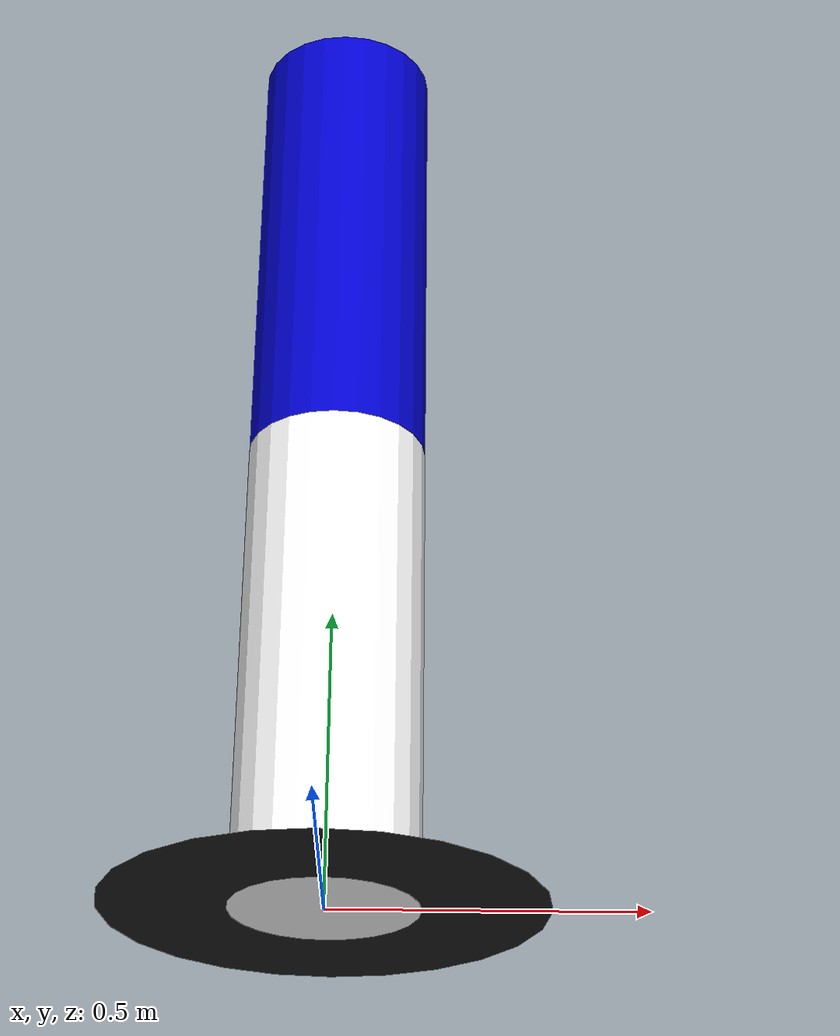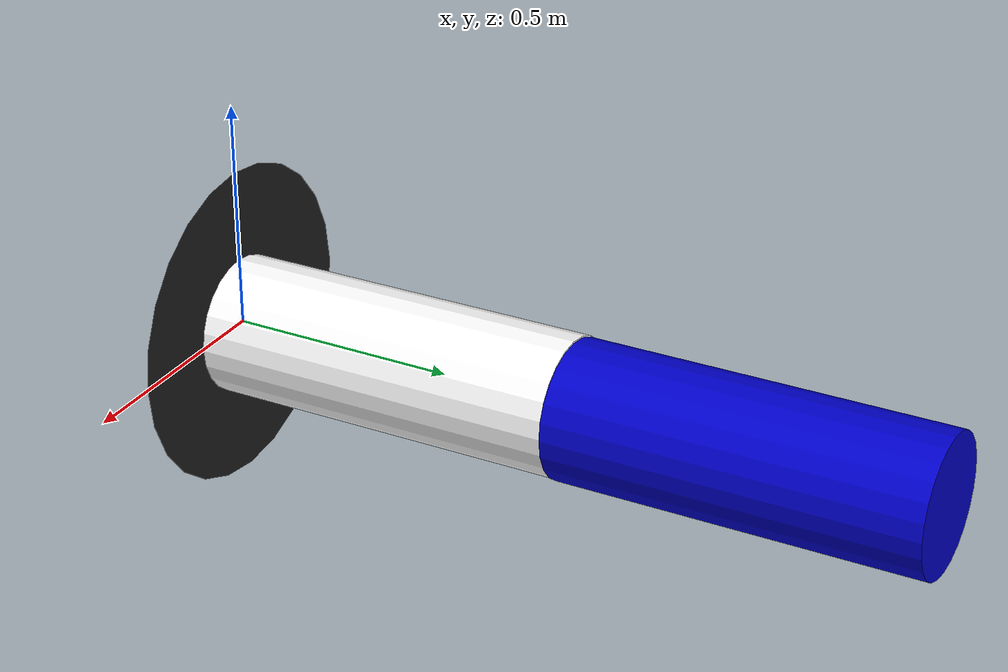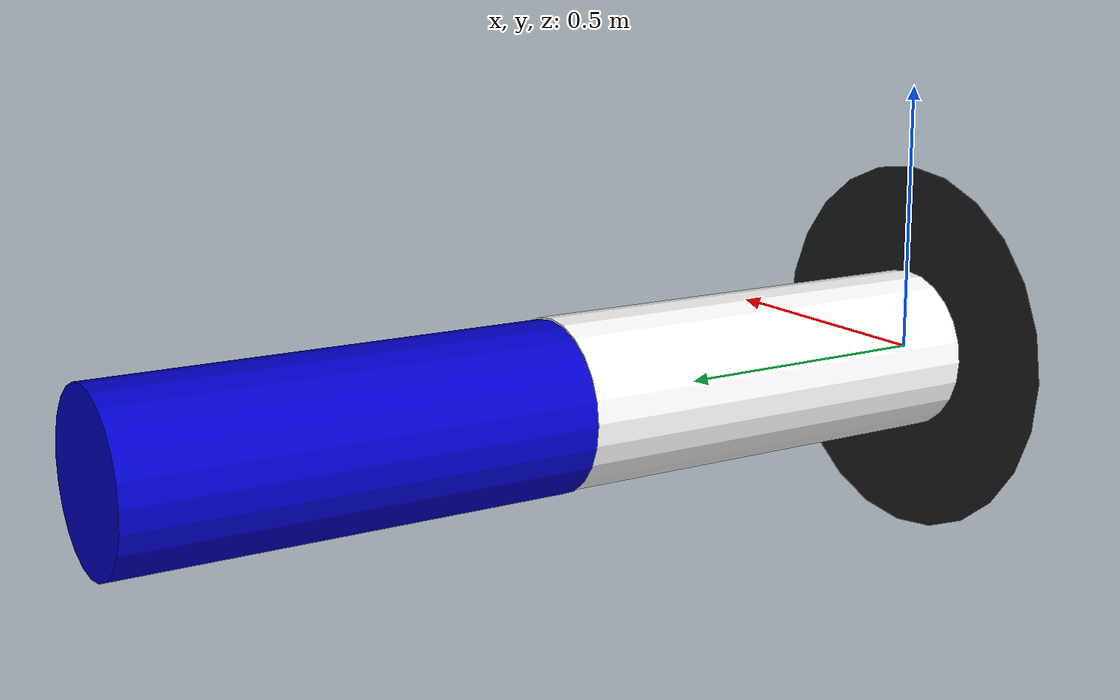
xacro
<?xml version="1.0" ?>

<robot name="mrm" xmlns:xacro="http://www.ros.org/wiki/xacro">

  <material name="blue">
    <color rgba="0 0 0.8 1"/>
  </material>

  <material name="white">
    <color rgba="1 1 1 1"/>
  </material>

  <link name="base_link">
      <visual>
          <origin rpy="1.575 0 0" xyz="0 0 0.0"/>
          <geometry>
              <cylinder radius="0.35" length="0.0"/>
          </geometry>
          <material name="black"/>
      </visual>
  </link>
  <joint name="base_link__link2" type="revolute">
      <axis xyz="0 0 1" />
      <limit effort="1000.0" lower="-3.14" upper="3.14" velocity="0.5" />
      <origin rpy="0 0 0" xyz="0 0 0"/>
      <parent link="base_link"/>
      <child link="link2"/>
  </joint>

  <link name="link2">
      <visual>
          <origin rpy="1.575 0 0" xyz="0 0.4 0"/>
          <geometry>
              <cylinder radius="0.15" length="0.8"/>
          </geometry>
          <material name="white"/>
      </visual>
      <collision>
        <geometry>
          <cylinder length="0.8" radius="0.15"/>
        </geometry>
      </collision>
      <inertial>
        <mass value="0.6"/>
        <inertia ixx="0.001" ixy="0.0" ixz="0.0" iyy="0.001" iyz="0.0" izz="0.001"/>
      </inertial>
  </link>

  <joint name="link2__link3" type="revolute">
      <axis xyz="0 0 1" />
      <limit effort="1000.0" lower="-3.14" upper="3.14" velocity="0.5" />
      <origin rpy="0 0 0" xyz="0 0.8 0"/>
      <parent link="link2"/>
      <child link="link3"/>
  </joint>

  <link name="link3">
      <visual>
          <origin rpy="1.575 0 0" xyz="0 0.4 0"/>
          <geometry>
              <cylinder radius="0.15" length="0.8"/>
          </geometry>
          <material name="blue"/>
      </visual>
      <collision>
        <geometry>
          <cylinder length="0.8" radius="0.15"/>
        </geometry>
      </collision>
      <inertial>
        <mass value="0.6"/>
        <inertia ixx="0.001" ixy="0.0" ixz="0.0" iyy="0.001" iyz="0.0" izz="0.001"/>
      </inertial>
  </link>
</robot>
